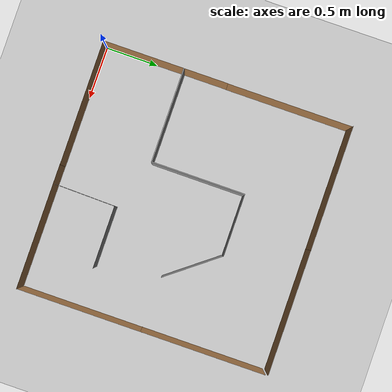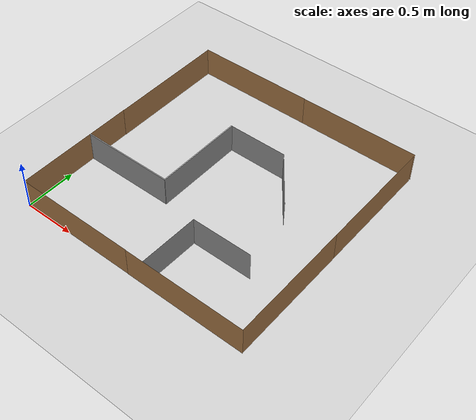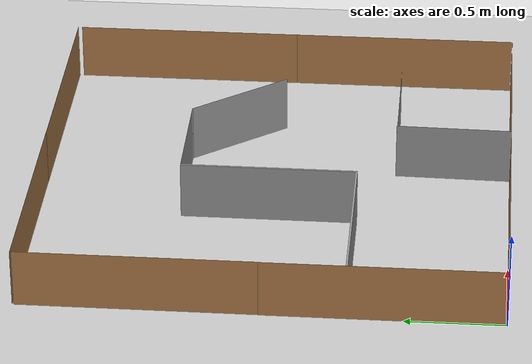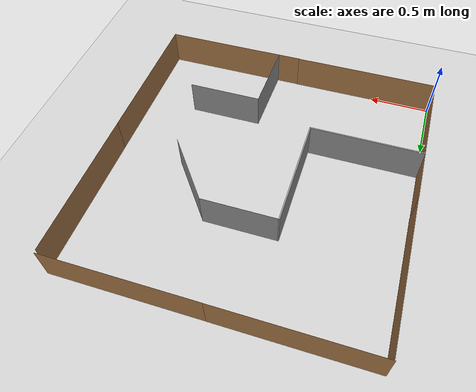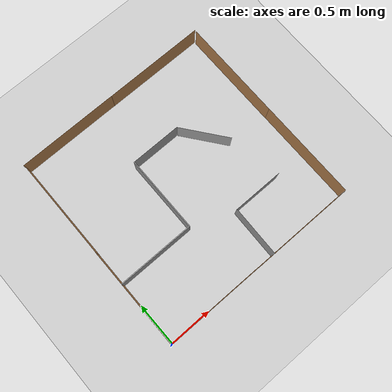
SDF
<sdf version="1.6">
 <world name="default">
  <light name="sun" type="directional">
   <pose>0 0 10 0 -0 0</pose>
   <diffuse>0.8 0.8 0.8 1</diffuse>
   <specular>0.2 0.2 0.2 1</specular>
   <attenuation>
    <range>1000</range>
    <constant>0.9</constant>
    <linear>0.01</linear>
    <quadratic>0.001</quadratic>
   </attenuation>
   <direction>-0.5 0.1 -0.9</direction>
  </light>
  <model name="ground_plane">
   <static>1</static>
   <link name="link">
    <collision name="collision">
     <geometry><plane><normal>0 0 1</normal><size>100 100</size></plane></geometry>
     <surface>
      <contact><collide_bitmask>65535</collide_bitmask></contact>
      <friction><ode><mu>100</mu><mu2>50</mu2></ode></friction>
     </surface>
    </collision>
    <visual name="visual">
     <cast_shadows>0</cast_shadows>
     <geometry><plane><normal>0 0 1</normal><size>100 100</size></plane></geometry>
     <material>
      <script><uri>file://media/materials/scripts/gazebo.material</uri><name>Gazebo/Grey</name></script>
     </material>
    </visual>
   </link>
  </model>
  <gravity>0 0 -9.8</gravity>
  <magnetic_field>6e-06 2.3e-05 -4.2e-05</magnetic_field>
  <atmosphere type="adiabatic"/>
  <physics name="default_physics" default="0" type="ode">
   <max_step_size>0.001</max_step_size>
   <real_time_factor>1</real_time_factor>
   <real_time_update_rate>1000</real_time_update_rate>
  </physics>
  <scene><ambient>0.4 0.4 0.4 1</ambient><background>0.7 0.7 0.7 1</background><shadows>1</shadows></scene>
  <spherical_coordinates>
   <surface_model>EARTH_WGS84</surface_model>
   <latitude_deg>0</latitude_deg>
   <longitude_deg>0</longitude_deg>
   <elevation>0</elevation>
   <heading_deg>0</heading_deg>
  </spherical_coordinates>
  <model name="Wall120">
   <pose>1.27258 4.22111 0 0 -0 0</pose>
   <link name="Wall_10">
    <collision name="Wall_10_Collision">
     <geometry><box><size>1.195 0 0.3</size></box></geometry>
     <pose>0 0 0.15 0 -0 0</pose>
    </collision>
    <visual name="Wall_10_Visual">
     <pose>0 0 0.15 0 -0 0</pose>
     <geometry><box><size>1.195 0 0.3</size></box></geometry>
     <material>
      <script><uri>file://media/materials/scripts/gazebo.material</uri><name>Gazebo/Wood</name></script>
      <ambient>1 1 1 1</ambient>
     </material>
     <meta><layer>0</layer></meta>
    </visual>
    <pose>-0.676108 -4.22242 0 0 -0 0</pose>
   </link>
   <static>1</static>
  </model>
  <model name="Wall06">
   <pose>1.2006 4.60922 0 0 -0 0</pose>
   <link name="Wall_13">
    <collision name="Wall_13_Collision">
     <geometry><box><size>0.595 0 0.3</size></box></geometry>
     <pose>0 0 0.15 0 -0 0</pose>
    </collision>
    <visual name="Wall_13_Visual">
     <pose>0 0 0.15 0 -0 0</pose>
     <geometry><box><size>0.595 0 0.3</size></box></geometry>
     <material>
      <script><uri>file://media/materials/scripts/gazebo.material</uri><name>Gazebo/Grey</name></script>
      <ambient>1 1 1 1</ambient>
     </material>
     <meta><layer>0</layer></meta>
    </visual>
    <pose>0 -2.9402 0 0 -0 3.14159</pose>
   </link>
   <static>1</static>
  </model>
  <model name="Wall09">
   <pose>0.451764 4.24711 0 0 -0 0</pose>
   <link name="Wall_15">
    <collision name="Wall_15_Collision">
     <geometry><box><size>0.9 0.01 0.3</size></box></geometry>
     <pose>0 0 0.15 0 -0 0</pose>
    </collision>
    <visual name="Wall_15_Visual">
     <pose>0 0 0.15 0 -0 0</pose>
     <geometry><box><size>0.9 0.01 0.3</size></box></geometry>
     <material>
      <script><uri>file://media/materials/scripts/gazebo.material</uri><name>Gazebo/Grey</name></script>
      <ambient>1 1 1 1</ambient>
     </material>
     <meta><layer>0</layer></meta>
    </visual>
    <pose>0 -3.47202 0 0 -0 3.14159</pose>
   </link>
   <static>1</static>
  </model>
  <model name="Wall120_0">
   <pose>4.22204 -0.08016 0 0 0 -1.57252</pose>
   <link name="Wall_10">
    <collision name="Wall_10_Collision">
     <geometry><box><size>1.195 0 0.3</size></box></geometry>
     <pose>0 0 0.15 0 -0 0</pose>
    </collision>
    <visual name="Wall_10_Visual">
     <pose>0 0 0.15 0 -0 0</pose>
     <geometry><box><size>1.195 0 0.3</size></box></geometry>
     <material>
      <script><uri>file://media/materials/scripts/gazebo.material</uri><name>Gazebo/Wood</name></script>
      <ambient>1 1 1 1</ambient>
     </material>
     <meta><layer>0</layer></meta>
    </visual>
    <pose>-0.676108 -4.22242 0 0 -0 0</pose>
   </link>
   <static>1</static>
  </model>
  <model name="Wall120_1">
   <pose>2.46322 4.21948 0 0 -0 0</pose>
   <link name="Wall_10">
    <collision name="Wall_10_Collision">
     <geometry><box><size>1.195 0 0.3</size></box></geometry>
     <pose>0 0 0.15 0 -0 0</pose>
    </collision>
    <visual name="Wall_10_Visual">
     <pose>0 0 0.15 0 -0 0</pose>
     <geometry><box><size>1.195 0 0.3</size></box></geometry>
     <material>
      <script><uri>file://media/materials/scripts/gazebo.material</uri><name>Gazebo/Wood</name></script>
      <ambient>1 1 1 1</ambient>
     </material>
     <meta><layer>0</layer></meta>
    </visual>
    <pose>-0.676108 -4.22242 0 0 -0 0</pose>
   </link>
   <static>1</static>
  </model>
  <model name="Wall120_2">
   <pose>-1.84011 1.27726 0 0 -0 1.57004</pose>
   <link name="Wall_10">
    <collision name="Wall_10_Collision">
     <geometry><box><size>1.195 0 0.3</size></box></geometry>
     <pose>0 0 0.15 0 -0 0</pose>
    </collision>
    <visual name="Wall_10_Visual">
     <pose>0 0 0.15 0 -0 0</pose>
     <geometry><box><size>1.195 0 0.3</size></box></geometry>
     <material>
      <script><uri>file://media/materials/scripts/gazebo.material</uri><name>Gazebo/Wood</name></script>
      <ambient>1 1 1 1</ambient>
     </material>
     <meta><layer>0</layer></meta>
    </visual>
    <pose>-0.676108 -4.22242 0 0 -0 0</pose>
   </link>
   <static>1</static>
  </model>
  <model name="Wall120_2_clone">
   <pose>-1.83993 2.45681 0 0 -0 1.57004</pose>
   <link name="Wall_10">
    <collision name="Wall_10_Collision">
     <geometry><box><size>1.195 0 0.3</size></box></geometry>
     <pose>0 0 0.15 0 -0 0</pose>
    </collision>
    <visual name="Wall_10_Visual">
     <pose>0 0 0.15 0 -0 0</pose>
     <geometry><box><size>1.195 0 0.3</size></box></geometry>
     <material>
      <script><uri>file://media/materials/scripts/gazebo.material</uri><name>Gazebo/Wood</name></script>
      <ambient>1 1 1 1</ambient>
     </material>
     <meta><layer>0</layer></meta>
    </visual>
    <pose>-0.676108 -4.22242 0 0 -0 0</pose>
   </link>
   <static>1</static>
  </model>
  <model name="Wall120_0_clone">
   <pose>4.22591 1.11007 0 0 0 -1.57252</pose>
   <link name="Wall_10">
    <collision name="Wall_10_Collision">
     <geometry><box><size>1.195 0 0.3</size></box></geometry>
     <pose>0 0 0.15 0 -0 0</pose>
    </collision>
    <visual name="Wall_10_Visual">
     <pose>0 0 0.15 0 -0 0</pose>
     <geometry><box><size>1.195 0 0.3</size></box></geometry>
     <material>
      <script><uri>file://media/materials/scripts/gazebo.material</uri><name>Gazebo/Wood</name></script>
      <ambient>1 1 1 1</ambient>
     </material>
     <meta><layer>0</layer></meta>
    </visual>
    <pose>-0.676108 -4.22242 0 0 -0 0</pose>
   </link>
   <static>1</static>
  </model>
  <model name="Wall120_clone">
   <pose>1.27173 6.6194 0 0 -0 0</pose>
   <link name="Wall_10">
    <collision name="Wall_10_Collision">
     <geometry><box><size>1.195 0 0.3</size></box></geometry>
     <pose>0 0 0.15 0 -0 0</pose>
    </collision>
    <visual name="Wall_10_Visual">
     <pose>0 0 0.15 0 -0 0</pose>
     <geometry><box><size>1.195 0 0.3</size></box></geometry>
     <material>
      <script><uri>file://media/materials/scripts/gazebo.material</uri><name>Gazebo/Wood</name></script>
      <ambient>1 1 1 1</ambient>
     </material>
     <meta><layer>0</layer></meta>
    </visual>
    <pose>-0.676108 -4.22242 0 0 -0 0</pose>
   </link>
   <static>1</static>
  </model>
  <model name="Wall120_clone_0">
   <pose>2.4613 6.61869 0 0 -0 0</pose>
   <link name="Wall_10">
    <collision name="Wall_10_Collision">
     <geometry><box><size>1.195 0 0.3</size></box></geometry>
     <pose>0 0 0.15 0 -0 0</pose>
    </collision>
    <visual name="Wall_10_Visual">
     <pose>0 0 0.15 0 -0 0</pose>
     <geometry><box><size>1.195 0 0.3</size></box></geometry>
     <material>
      <script><uri>file://media/materials/scripts/gazebo.material</uri><name>Gazebo/Wood</name></script>
      <ambient>1 1 1 1</ambient>
     </material>
     <meta><layer>0</layer></meta>
    </visual>
    <pose>-0.676108 -4.22242 0 0 -0 0</pose>
   </link>
   <static>1</static>
  </model>
  <model name="Wall09_clone">
   <pose>-2.5686 1.23307 0 0 -0 1.56709</pose>
   <link name="Wall_15">
    <collision name="Wall_15_Collision">
     <geometry><box><size>0.9 0.01 0.3</size></box></geometry>
     <pose>0 0 0.15 0 -0 0</pose>
    </collision>
    <visual name="Wall_15_Visual">
     <pose>0 0 0.15 0 -0 0</pose>
     <geometry><box><size>0.9 0.01 0.3</size></box></geometry>
     <material>
      <script><uri>file://media/materials/scripts/gazebo.material</uri><name>Gazebo/Grey</name></script>
      <ambient>1 1 1 1</ambient>
     </material>
     <meta><layer>0</layer></meta>
    </visual>
    <pose>0 -3.47202 0 0 -0 3.14159</pose>
   </link>
   <static>1</static>
  </model>
  <model name="Wall06_clone">
   <pose>4.00094 3.23588 0 0 0 -0.910072</pose>
   <link name="Wall_13">
    <collision name="Wall_13_Collision">
     <geometry><box><size>0.595 0 0.3</size></box></geometry>
     <pose>0 0 0.15 0 -0 0</pose>
    </collision>
    <visual name="Wall_13_Visual">
     <pose>0 0 0.15 0 -0 0</pose>
     <geometry><box><size>0.595 0 0.3</size></box></geometry>
     <material>
      <script><uri>file://media/materials/scripts/gazebo.material</uri><name>Gazebo/Grey</name></script>
      <ambient>1 1 1 1</ambient>
     </material>
     <meta><layer>0</layer></meta>
    </visual>
    <pose>0 -2.9402 0 0 -0 3.14159</pose>
   </link>
   <static>1</static>
  </model>
  <model name="Wall06_clone_clone">
   <pose>4.32336 0.227675 0 0 0 -1.59358</pose>
   <link name="Wall_13">
    <collision name="Wall_13_Collision">
     <geometry><box><size>0.595 0 0.3</size></box></geometry>
     <pose>0 0 0.15 0 -0 0</pose>
    </collision>
    <visual name="Wall_13_Visual">
     <pose>0 0 0.15 0 -0 0</pose>
     <geometry><box><size>0.595 0 0.3</size></box></geometry>
     <material>
      <script><uri>file://media/materials/scripts/gazebo.material</uri><name>Gazebo/Grey</name></script>
      <ambient>1 1 1 1</ambient>
     </material>
     <meta><layer>0</layer></meta>
    </visual>
    <pose>0 -2.9402 0 0 -0 3.14159</pose>
   </link>
   <static>1</static>
  </model>
  <model name="Wall06_clone_0">
   <pose>1.68744 3.52833 0 0 -0 0</pose>
   <link name="Wall_13">
    <collision name="Wall_13_Collision">
     <geometry><box><size>0.595 0 0.3</size></box></geometry>
     <pose>0 0 0.15 0 -0 0</pose>
    </collision>
    <visual name="Wall_13_Visual">
     <pose>0 0 0.15 0 -0 0</pose>
     <geometry><box><size>0.595 0 0.3</size></box></geometry>
     <material>
      <script><uri>file://media/materials/scripts/gazebo.material</uri><name>Gazebo/Grey</name></script>
      <ambient>1 1 1 1</ambient>
     </material>
     <meta><layer>0</layer></meta>
    </visual>
    <pose>0 -2.9402 0 0 -0 3.14159</pose>
   </link>
   <static>1</static>
  </model>
 </world>
</sdf>
